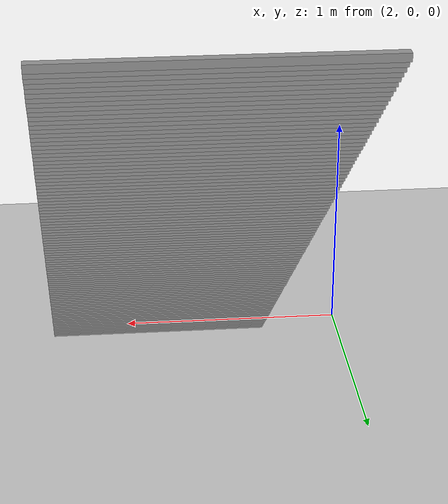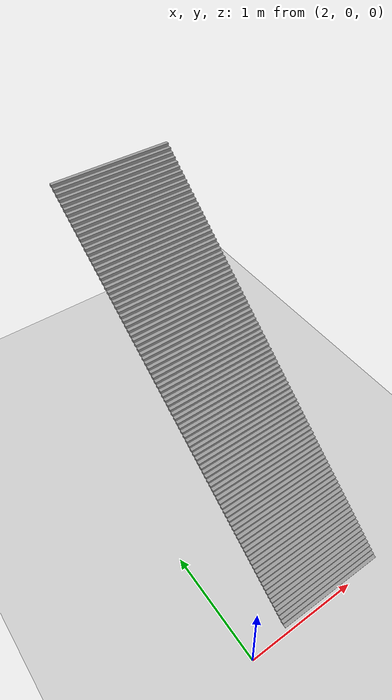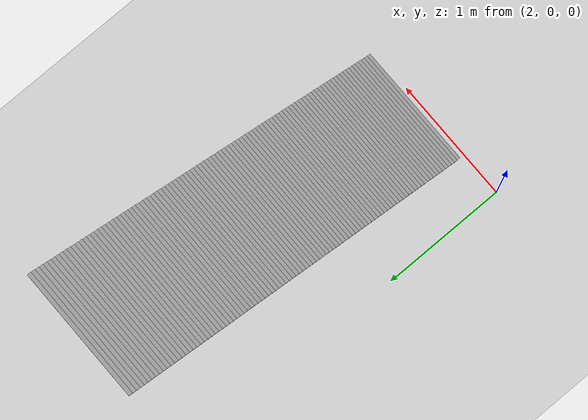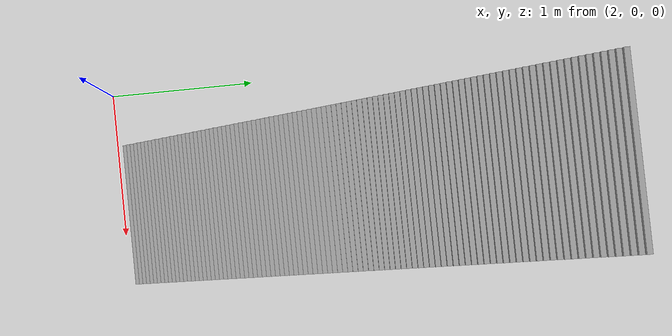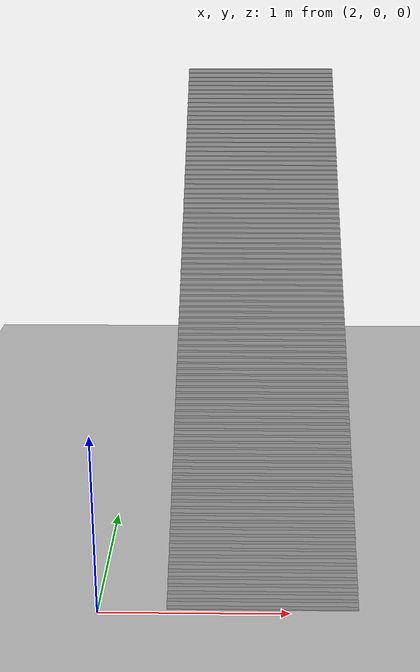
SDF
<sdf version="1.7">
 <world name="default">
  <model name="ground_plane">
   <static>1</static>
   <link name="link">
    <collision name="collision">
     <geometry><plane><normal>0 0 1</normal><size>100 100</size></plane></geometry>
     <surface>
      <contact><collide_bitmask>65535</collide_bitmask></contact>
      <friction><ode><mu>100</mu><mu2>50</mu2></ode></friction>
     </surface>
    </collision>
    <visual name="visual">
     <cast_shadows>0</cast_shadows>
     <geometry><plane><normal>0 0 1</normal><size>100 100</size></plane></geometry>
     <material>
      <script><uri>file://media/materials/scripts/gazebo.material</uri><name>Gazebo/Grey</name></script>
     </material>
    </visual>
   </link>
  </model>
  <model name="test2">
   <pose>0.709104 2.22387 -0.073744 0 -0 0</pose>
   <link name="Stairs_6">
    <visual name="Stairs_6_Visual_0">
     <pose>2.14709 -2.23346 0.0125 0 -0 -3.14159</pose>
     <geometry><box><size>1 0.03 0.025</size></box></geometry>
     <material>
      <script><uri>file://media/materials/scripts/gazebo.material</uri><name>Gazebo/Grey</name></script>
      <ambient>1 1 1 1</ambient>
     </material>
     <meta><layer>0</layer></meta>
    </visual>
    <collision name="Stairs_6_Collision_0">
     <geometry><box><size>1 0.03 0.025</size></box></geometry>
     <pose>2.14709 -2.23346 0.0125 0 -0 -3.14159</pose>
    </collision>
    <visual name="Stairs_6_Visual_1">
     <pose>2.14709 -2.20346 0.0375 0 -0 -3.14159</pose>
     <geometry><box><size>1 0.03 0.025</size></box></geometry>
     <material>
      <script><uri>file://media/materials/scripts/gazebo.material</uri><name>Gazebo/Grey</name></script>
      <ambient>1 1 1 1</ambient>
     </material>
     <meta><layer>0</layer></meta>
    </visual>
    <collision name="Stairs_6_Collision_1">
     <geometry><box><size>1 0.03 0.025</size></box></geometry>
     <pose>2.14709 -2.20346 0.0375 0 -0 -3.14159</pose>
    </collision>
    <visual name="Stairs_6_Visual_2">
     <pose>2.14709 -2.17346 0.0625 0 -0 -3.14159</pose>
     <geometry><box><size>1 0.03 0.025</size></box></geometry>
     <material>
      <script><uri>file://media/materials/scripts/gazebo.material</uri><name>Gazebo/Grey</name></script>
      <ambient>1 1 1 1</ambient>
     </material>
     <meta><layer>0</layer></meta>
    </visual>
    <collision name="Stairs_6_Collision_2">
     <geometry><box><size>1 0.03 0.025</size></box></geometry>
     <pose>2.14709 -2.17346 0.0625 0 -0 -3.14159</pose>
    </collision>
    <visual name="Stairs_6_Visual_3">
     <pose>2.14709 -2.14346 0.0875 0 -0 -3.14159</pose>
     <geometry><box><size>1 0.03 0.025</size></box></geometry>
     <material>
      <script><uri>file://media/materials/scripts/gazebo.material</uri><name>Gazebo/Grey</name></script>
      <ambient>1 1 1 1</ambient>
     </material>
     <meta><layer>0</layer></meta>
    </visual>
    <collision name="Stairs_6_Collision_3">
     <geometry><box><size>1 0.03 0.025</size></box></geometry>
     <pose>2.14709 -2.14346 0.0875 0 -0 -3.14159</pose>
    </collision>
    <visual name="Stairs_6_Visual_4">
     <pose>2.14709 -2.11346 0.1125 0 -0 -3.14159</pose>
     <geometry><box><size>1 0.03 0.025</size></box></geometry>
     <material>
      <script><uri>file://media/materials/scripts/gazebo.material</uri><name>Gazebo/Grey</name></script>
      <ambient>1 1 1 1</ambient>
     </material>
     <meta><layer>0</layer></meta>
    </visual>
    <collision name="Stairs_6_Collision_4">
     <geometry><box><size>1 0.03 0.025</size></box></geometry>
     <pose>2.14709 -2.11346 0.1125 0 -0 -3.14159</pose>
    </collision>
    <visual name="Stairs_6_Visual_5">
     <pose>2.14709 -2.08346 0.1375 0 -0 -3.14159</pose>
     <geometry><box><size>1 0.03 0.025</size></box></geometry>
     <material>
      <script><uri>file://media/materials/scripts/gazebo.material</uri><name>Gazebo/Grey</name></script>
      <ambient>1 1 1 1</ambient>
     </material>
     <meta><layer>0</layer></meta>
    </visual>
    <collision name="Stairs_6_Collision_5">
     <geometry><box><size>1 0.03 0.025</size></box></geometry>
     <pose>2.14709 -2.08346 0.1375 0 -0 -3.14159</pose>
    </collision>
    <visual name="Stairs_6_Visual_6">
     <pose>2.14709 -2.05346 0.1625 0 -0 -3.14159</pose>
     <geometry><box><size>1 0.03 0.025</size></box></geometry>
     <material>
      <script><uri>file://media/materials/scripts/gazebo.material</uri><name>Gazebo/Grey</name></script>
      <ambient>1 1 1 1</ambient>
     </material>
     <meta><layer>0</layer></meta>
    </visual>
    <collision name="Stairs_6_Collision_6">
     <geometry><box><size>1 0.03 0.025</size></box></geometry>
     <pose>2.14709 -2.05346 0.1625 0 -0 -3.14159</pose>
    </collision>
    <visual name="Stairs_6_Visual_7">
     <pose>2.14709 -2.02346 0.1875 0 -0 -3.14159</pose>
     <geometry><box><size>1 0.03 0.025</size></box></geometry>
     <material>
      <script><uri>file://media/materials/scripts/gazebo.material</uri><name>Gazebo/Grey</name></script>
      <ambient>1 1 1 1</ambient>
     </material>
     <meta><layer>0</layer></meta>
    </visual>
    <collision name="Stairs_6_Collision_7">
     <geometry><box><size>1 0.03 0.025</size></box></geometry>
     <pose>2.14709 -2.02346 0.1875 0 -0 -3.14159</pose>
    </collision>
    <visual name="Stairs_6_Visual_8">
     <pose>2.14709 -1.99346 0.2125 0 -0 -3.14159</pose>
     <geometry><box><size>1 0.03 0.025</size></box></geometry>
     <material>
      <script><uri>file://media/materials/scripts/gazebo.material</uri><name>Gazebo/Grey</name></script>
      <ambient>1 1 1 1</ambient>
     </material>
     <meta><layer>0</layer></meta>
    </visual>
    <collision name="Stairs_6_Collision_8">
     <geometry><box><size>1 0.03 0.025</size></box></geometry>
     <pose>2.14709 -1.99346 0.2125 0 -0 -3.14159</pose>
    </collision>
    <visual name="Stairs_6_Visual_9">
     <pose>2.14709 -1.96346 0.2375 0 -0 -3.14159</pose>
     <geometry><box><size>1 0.03 0.025</size></box></geometry>
     <material>
      <script><uri>file://media/materials/scripts/gazebo.material</uri><name>Gazebo/Grey</name></script>
      <ambient>1 1 1 1</ambient>
     </material>
     <meta><layer>0</layer></meta>
    </visual>
    <collision name="Stairs_6_Collision_9">
     <geometry><box><size>1 0.03 0.025</size></box></geometry>
     <pose>2.14709 -1.96346 0.2375 0 -0 -3.14159</pose>
    </collision>
    <visual name="Stairs_6_Visual_10">
     <pose>2.14709 -1.93346 0.2625 0 -0 -3.14159</pose>
     <geometry><box><size>1 0.03 0.025</size></box></geometry>
     <material>
      <script><uri>file://media/materials/scripts/gazebo.material</uri><name>Gazebo/Grey</name></script>
      <ambient>1 1 1 1</ambient>
     </material>
     <meta><layer>0</layer></meta>
    </visual>
    <collision name="Stairs_6_Collision_10">
     <geometry><box><size>1 0.03 0.025</size></box></geometry>
     <pose>2.14709 -1.93346 0.2625 0 -0 -3.14159</pose>
    </collision>
    <visual name="Stairs_6_Visual_11">
     <pose>2.14709 -1.90346 0.2875 0 -0 -3.14159</pose>
     <geometry><box><size>1 0.03 0.025</size></box></geometry>
     <material>
      <script><uri>file://media/materials/scripts/gazebo.material</uri><name>Gazebo/Grey</name></script>
      <ambient>1 1 1 1</ambient>
     </material>
     <meta><layer>0</layer></meta>
    </visual>
    <collision name="Stairs_6_Collision_11">
     <geometry><box><size>1 0.03 0.025</size></box></geometry>
     <pose>2.14709 -1.90346 0.2875 0 -0 -3.14159</pose>
    </collision>
    <visual name="Stairs_6_Visual_12">
     <pose>2.14709 -1.87346 0.3125 0 -0 -3.14159</pose>
     <geometry><box><size>1 0.03 0.025</size></box></geometry>
     <material>
      <script><uri>file://media/materials/scripts/gazebo.material</uri><name>Gazebo/Grey</name></script>
      <ambient>1 1 1 1</ambient>
     </material>
     <meta><layer>0</layer></meta>
    </visual>
    <collision name="Stairs_6_Collision_12">
     <geometry><box><size>1 0.03 0.025</size></box></geometry>
     <pose>2.14709 -1.87346 0.3125 0 -0 -3.14159</pose>
    </collision>
    <visual name="Stairs_6_Visual_13">
     <pose>2.14709 -1.84346 0.3375 0 -0 -3.14159</pose>
     <geometry><box><size>1 0.03 0.025</size></box></geometry>
     <material>
      <script><uri>file://media/materials/scripts/gazebo.material</uri><name>Gazebo/Grey</name></script>
      <ambient>1 1 1 1</ambient>
     </material>
     <meta><layer>0</layer></meta>
    </visual>
    <collision name="Stairs_6_Collision_13">
     <geometry><box><size>1 0.03 0.025</size></box></geometry>
     <pose>2.14709 -1.84346 0.3375 0 -0 -3.14159</pose>
    </collision>
    <visual name="Stairs_6_Visual_14">
     <pose>2.14709 -1.81346 0.3625 0 -0 -3.14159</pose>
     <geometry><box><size>1 0.03 0.025</size></box></geometry>
     <material>
      <script><uri>file://media/materials/scripts/gazebo.material</uri><name>Gazebo/Grey</name></script>
      <ambient>1 1 1 1</ambient>
     </material>
     <meta><layer>0</layer></meta>
    </visual>
    <collision name="Stairs_6_Collision_14">
     <geometry><box><size>1 0.03 0.025</size></box></geometry>
     <pose>2.14709 -1.81346 0.3625 0 -0 -3.14159</pose>
    </collision>
    <visual name="Stairs_6_Visual_15">
     <pose>2.14709 -1.78346 0.3875 0 -0 -3.14159</pose>
     <geometry><box><size>1 0.03 0.025</size></box></geometry>
     <material>
      <script><uri>file://media/materials/scripts/gazebo.material</uri><name>Gazebo/Grey</name></script>
      <ambient>1 1 1 1</ambient>
     </material>
     <meta><layer>0</layer></meta>
    </visual>
    <collision name="Stairs_6_Collision_15">
     <geometry><box><size>1 0.03 0.025</size></box></geometry>
     <pose>2.14709 -1.78346 0.3875 0 -0 -3.14159</pose>
    </collision>
    <visual name="Stairs_6_Visual_16">
     <pose>2.14709 -1.75346 0.4125 0 -0 -3.14159</pose>
     <geometry><box><size>1 0.03 0.025</size></box></geometry>
     <material>
      <script><uri>file://media/materials/scripts/gazebo.material</uri><name>Gazebo/Grey</name></script>
      <ambient>1 1 1 1</ambient>
     </material>
     <meta><layer>0</layer></meta>
    </visual>
    <collision name="Stairs_6_Collision_16">
     <geometry><box><size>1 0.03 0.025</size></box></geometry>
     <pose>2.14709 -1.75346 0.4125 0 -0 -3.14159</pose>
    </collision>
    <visual name="Stairs_6_Visual_17">
     <pose>2.14709 -1.72346 0.4375 0 -0 -3.14159</pose>
     <geometry><box><size>1 0.03 0.025</size></box></geometry>
     <material>
      <script><uri>file://media/materials/scripts/gazebo.material</uri><name>Gazebo/Grey</name></script>
      <ambient>1 1 1 1</ambient>
     </material>
     <meta><layer>0</layer></meta>
    </visual>
    <collision name="Stairs_6_Collision_17">
     <geometry><box><size>1 0.03 0.025</size></box></geometry>
     <pose>2.14709 -1.72346 0.4375 0 -0 -3.14159</pose>
    </collision>
    <visual name="Stairs_6_Visual_18">
     <pose>2.14709 -1.69346 0.4625 0 -0 -3.14159</pose>
     <geometry><box><size>1 0.03 0.025</size></box></geometry>
     <material>
      <script><uri>file://media/materials/scripts/gazebo.material</uri><name>Gazebo/Grey</name></script>
      <ambient>1 1 1 1</ambient>
     </material>
     <meta><layer>0</layer></meta>
    </visual>
    <collision name="Stairs_6_Collision_18">
     <geometry><box><size>1 0.03 0.025</size></box></geometry>
     <pose>2.14709 -1.69346 0.4625 0 -0 -3.14159</pose>
    </collision>
    <visual name="Stairs_6_Visual_19">
     <pose>2.14709 -1.66346 0.4875 0 -0 -3.14159</pose>
     <geometry><box><size>1 0.03 0.025</size></box></geometry>
     <material>
      <script><uri>file://media/materials/scripts/gazebo.material</uri><name>Gazebo/Grey</name></script>
      <ambient>1 1 1 1</ambient>
     </material>
     <meta><layer>0</layer></meta>
    </visual>
    <collision name="Stairs_6_Collision_19">
     <geometry><box><size>1 0.03 0.025</size></box></geometry>
     <pose>2.14709 -1.66346 0.4875 0 -0 -3.14159</pose>
    </collision>
    <visual name="Stairs_6_Visual_20">
     <pose>2.14709 -1.63346 0.5125 0 -0 -3.14159</pose>
     <geometry><box><size>1 0.03 0.025</size></box></geometry>
     <material>
      <script><uri>file://media/materials/scripts/gazebo.material</uri><name>Gazebo/Grey</name></script>
      <ambient>1 1 1 1</ambient>
     </material>
     <meta><layer>0</layer></meta>
    </visual>
    <collision name="Stairs_6_Collision_20">
     <geometry><box><size>1 0.03 0.025</size></box></geometry>
     <pose>2.14709 -1.63346 0.5125 0 -0 -3.14159</pose>
    </collision>
    <visual name="Stairs_6_Visual_21">
     <pose>2.14709 -1.60346 0.5375 0 -0 -3.14159</pose>
     <geometry><box><size>1 0.03 0.025</size></box></geometry>
     <material>
      <script><uri>file://media/materials/scripts/gazebo.material</uri><name>Gazebo/Grey</name></script>
      <ambient>1 1 1 1</ambient>
     </material>
     <meta><layer>0</layer></meta>
    </visual>
    <collision name="Stairs_6_Collision_21">
     <geometry><box><size>1 0.03 0.025</size></box></geometry>
     <pose>2.14709 -1.60346 0.5375 0 -0 -3.14159</pose>
    </collision>
    <visual name="Stairs_6_Visual_22">
     <pose>2.14709 -1.57346 0.5625 0 -0 -3.14159</pose>
     <geometry><box><size>1 0.03 0.025</size></box></geometry>
     <material>
      <script><uri>file://media/materials/scripts/gazebo.material</uri><name>Gazebo/Grey</name></script>
      <ambient>1 1 1 1</ambient>
     </material>
     <meta><layer>0</layer></meta>
    </visual>
    <collision name="Stairs_6_Collision_22">
     <geometry><box><size>1 0.03 0.025</size></box></geometry>
     <pose>2.14709 -1.57346 0.5625 0 -0 -3.14159</pose>
    </collision>
    <visual name="Stairs_6_Visual_23">
     <pose>2.14709 -1.54346 0.5875 0 -0 -3.14159</pose>
     <geometry><box><size>1 0.03 0.025</size></box></geometry>
     <material>
      <script><uri>file://media/materials/scripts/gazebo.material</uri><name>Gazebo/Grey</name></script>
      <ambient>1 1 1 1</ambient>
     </material>
     <meta><layer>0</layer></meta>
    </visual>
    <collision name="Stairs_6_Collision_23">
     <geometry><box><size>1 0.03 0.025</size></box></geometry>
     <pose>2.14709 -1.54346 0.5875 0 -0 -3.14159</pose>
    </collision>
    <visual name="Stairs_6_Visual_24">
     <pose>2.14709 -1.51346 0.6125 0 -0 -3.14159</pose>
     <geometry><box><size>1 0.03 0.025</size></box></geometry>
     <material>
      <script><uri>file://media/materials/scripts/gazebo.material</uri><name>Gazebo/Grey</name></script>
      <ambient>1 1 1 1</ambient>
     </material>
     <meta><layer>0</layer></meta>
    </visual>
    <collision name="Stairs_6_Collision_24">
     <geometry><box><size>1 0.03 0.025</size></box></geometry>
     <pose>2.14709 -1.51346 0.6125 0 -0 -3.14159</pose>
    </collision>
    <visual name="Stairs_6_Visual_25">
     <pose>2.14709 -1.48346 0.6375 0 -0 -3.14159</pose>
     <geometry><box><size>1 0.03 0.025</size></box></geometry>
     <material>
      <script><uri>file://media/materials/scripts/gazebo.material</uri><name>Gazebo/Grey</name></script>
      <ambient>1 1 1 1</ambient>
     </material>
     <meta><layer>0</layer></meta>
    </visual>
    <collision name="Stairs_6_Collision_25">
     <geometry><box><size>1 0.03 0.025</size></box></geometry>
     <pose>2.14709 -1.48346 0.6375 0 -0 -3.14159</pose>
    </collision>
    <visual name="Stairs_6_Visual_26">
     <pose>2.14709 -1.45346 0.6625 0 -0 -3.14159</pose>
     <geometry><box><size>1 0.03 0.025</size></box></geometry>
     <material>
      <script><uri>file://media/materials/scripts/gazebo.material</uri><name>Gazebo/Grey</name></script>
      <ambient>1 1 1 1</ambient>
     </material>
     <meta><layer>0</layer></meta>
    </visual>
    <collision name="Stairs_6_Collision_26">
     <geometry><box><size>1 0.03 0.025</size></box></geometry>
     <pose>2.14709 -1.45346 0.6625 0 -0 -3.14159</pose>
    </collision>
    <visual name="Stairs_6_Visual_27">
     <pose>2.14709 -1.42346 0.6875 0 -0 -3.14159</pose>
     <geometry><box><size>1 0.03 0.025</size></box></geometry>
     <material>
      <script><uri>file://media/materials/scripts/gazebo.material</uri><name>Gazebo/Grey</name></script>
      <ambient>1 1 1 1</ambient>
     </material>
     <meta><layer>0</layer></meta>
    </visual>
    <collision name="Stairs_6_Collision_27">
     <geometry><box><size>1 0.03 0.025</size></box></geometry>
     <pose>2.14709 -1.42346 0.6875 0 -0 -3.14159</pose>
    </collision>
    <visual name="Stairs_6_Visual_28">
     <pose>2.14709 -1.39346 0.7125 0 -0 -3.14159</pose>
     <geometry><box><size>1 0.03 0.025</size></box></geometry>
     <material>
      <script><uri>file://media/materials/scripts/gazebo.material</uri><name>Gazebo/Grey</name></script>
      <ambient>1 1 1 1</ambient>
     </material>
     <meta><layer>0</layer></meta>
    </visual>
    <collision name="Stairs_6_Collision_28">
     <geometry><box><size>1 0.03 0.025</size></box></geometry>
     <pose>2.14709 -1.39346 0.7125 0 -0 -3.14159</pose>
    </collision>
    <visual name="Stairs_6_Visual_29">
     <pose>2.14709 -1.36346 0.7375 0 -0 -3.14159</pose>
     <geometry><box><size>1 0.03 0.025</size></box></geometry>
     <material>
      <script><uri>file://media/materials/scripts/gazebo.material</uri><name>Gazebo/Grey</name></script>
      <ambient>1 1 1 1</ambient>
     </material>
     <meta><layer>0</layer></meta>
    </visual>
    <collision name="Stairs_6_Collision_29">
     <geometry><box><size>1 0.03 0.025</size></box></geometry>
     <pose>2.14709 -1.36346 0.7375 0 -0 -3.14159</pose>
    </collision>
    <visual name="Stairs_6_Visual_30">
     <pose>2.14709 -1.33346 0.7625 0 -0 -3.14159</pose>
     <geometry><box><size>1 0.03 0.025</size></box></geometry>
     <material>
      <script><uri>file://media/materials/scripts/gazebo.material</uri><name>Gazebo/Grey</name></script>
      <ambient>1 1 1 1</ambient>
     </material>
     <meta><layer>0</layer></meta>
    </visual>
    <collision name="Stairs_6_Collision_30">
     <geometry><box><size>1 0.03 0.025</size></box></geometry>
     <pose>2.14709 -1.33346 0.7625 0 -0 -3.14159</pose>
    </collision>
    <visual name="Stairs_6_Visual_31">
     <pose>2.14709 -1.30346 0.7875 0 -0 -3.14159</pose>
     <geometry><box><size>1 0.03 0.025</size></box></geometry>
     <material>
      <script><uri>file://media/materials/scripts/gazebo.material</uri><name>Gazebo/Grey</name></script>
      <ambient>1 1 1 1</ambient>
     </material>
     <meta><layer>0</layer></meta>
    </visual>
    <collision name="Stairs_6_Collision_31">
     <geometry><box><size>1 0.03 0.025</size></box></geometry>
     <pose>2.14709 -1.30346 0.7875 0 -0 -3.14159</pose>
    </collision>
    <visual name="Stairs_6_Visual_32">
     <pose>2.14709 -1.27346 0.8125 0 -0 -3.14159</pose>
     <geometry><box><size>1 0.03 0.025</size></box></geometry>
     <material>
      <script><uri>file://media/materials/scripts/gazebo.material</uri><name>Gazebo/Grey</name></script>
      <ambient>1 1 1 1</ambient>
     </material>
     <meta><layer>0</layer></meta>
    </visual>
    <collision name="Stairs_6_Collision_32">
     <geometry><box><size>1 0.03 0.025</size></box></geometry>
     <pose>2.14709 -1.27346 0.8125 0 -0 -3.14159</pose>
    </collision>
    <visual name="Stairs_6_Visual_33">
     <pose>2.14709 -1.24346 0.8375 0 -0 -3.14159</pose>
     <geometry><box><size>1 0.03 0.025</size></box></geometry>
     <material>
      <script><uri>file://media/materials/scripts/gazebo.material</uri><name>Gazebo/Grey</name></script>
      <ambient>1 1 1 1</ambient>
     </material>
     <meta><layer>0</layer></meta>
    </visual>
    <collision name="Stairs_6_Collision_33">
     <geometry><box><size>1 0.03 0.025</size></box></geometry>
     <pose>2.14709 -1.24346 0.8375 0 -0 -3.14159</pose>
    </collision>
    <visual name="Stairs_6_Visual_34">
     <pose>2.14709 -1.21346 0.8625 0 -0 -3.14159</pose>
     <geometry><box><size>1 0.03 0.025</size></box></geometry>
     <material>
      <script><uri>file://media/materials/scripts/gazebo.material</uri><name>Gazebo/Grey</name></script>
      <ambient>1 1 1 1</ambient>
     </material>
     <meta><layer>0</layer></meta>
    </visual>
    <collision name="Stairs_6_Collision_34">
     <geometry><box><size>1 0.03 0.025</size></box></geometry>
     <pose>2.14709 -1.21346 0.8625 0 -0 -3.14159</pose>
    </collision>
    <visual name="Stairs_6_Visual_35">
     <pose>2.14709 -1.18346 0.8875 0 -0 -3.14159</pose>
     <geometry><box><size>1 0.03 0.025</size></box></geometry>
     <material>
      <script><uri>file://media/materials/scripts/gazebo.material</uri><name>Gazebo/Grey</name></script>
      <ambient>1 1 1 1</ambient>
     </material>
     <meta><layer>0</layer></meta>
    </visual>
    <collision name="Stairs_6_Collision_35">
     <geometry><box><size>1 0.03 0.025</size></box></geometry>
     <pose>2.14709 -1.18346 0.8875 0 -0 -3.14159</pose>
    </collision>
    <visual name="Stairs_6_Visual_36">
     <pose>2.14709 -1.15346 0.9125 0 -0 -3.14159</pose>
     <geometry><box><size>1 0.03 0.025</size></box></geometry>
     <material>
      <script><uri>file://media/materials/scripts/gazebo.material</uri><name>Gazebo/Grey</name></script>
      <ambient>1 1 1 1</ambient>
     </material>
     <meta><layer>0</layer></meta>
    </visual>
    <collision name="Stairs_6_Collision_36">
     <geometry><box><size>1 0.03 0.025</size></box></geometry>
     <pose>2.14709 -1.15346 0.9125 0 -0 -3.14159</pose>
    </collision>
    <visual name="Stairs_6_Visual_37">
     <pose>2.14709 -1.12346 0.9375 0 -0 -3.14159</pose>
     <geometry><box><size>1 0.03 0.025</size></box></geometry>
     <material>
      <script><uri>file://media/materials/scripts/gazebo.material</uri><name>Gazebo/Grey</name></script>
      <ambient>1 1 1 1</ambient>
     </material>
     <meta><layer>0</layer></meta>
    </visual>
    <collision name="Stairs_6_Collision_37">
     <geometry><box><size>1 0.03 0.025</size></box></geometry>
     <pose>2.14709 -1.12346 0.9375 0 -0 -3.14159</pose>
    </collision>
    <visual name="Stairs_6_Visual_38">
     <pose>2.14709 -1.09346 0.9625 0 -0 -3.14159</pose>
     <geometry><box><size>1 0.03 0.025</size></box></geometry>
     <material>
      <script><uri>file://media/materials/scripts/gazebo.material</uri><name>Gazebo/Grey</name></script>
      <ambient>1 1 1 1</ambient>
     </material>
     <meta><layer>0</layer></meta>
    </visual>
    <collision name="Stairs_6_Collision_38">
     <geometry><box><size>1 0.03 0.025</size></box></geometry>
     <pose>2.14709 -1.09346 0.9625 0 -0 -3.14159</pose>
    </collision>
    <visual name="Stairs_6_Visual_39">
     <pose>2.14709 -1.06346 0.9875 0 -0 -3.14159</pose>
     <geometry><box><size>1 0.03 0.025</size></box></geometry>
     <material>
      <script><uri>file://media/materials/scripts/gazebo.material</uri><name>Gazebo/Grey</name></script>
      <ambient>1 1 1 1</ambient>
     </material>
     <meta><layer>0</layer></meta>
    </visual>
    <collision name="Stairs_6_Collision_39">
     <geometry><box><size>1 0.03 0.025</size></box></geometry>
     <pose>2.14709 -1.06346 0.9875 0 -0 -3.14159</pose>
    </collision>
    <visual name="Stairs_6_Visual_40">
     <pose>2.14709 -1.03346 1.0125 0 -0 -3.14159</pose>
     <geometry><box><size>1 0.03 0.025</size></box></geometry>
     <material>
      <script><uri>file://media/materials/scripts/gazebo.material</uri><name>Gazebo/Grey</name></script>
      <ambient>1 1 1 1</ambient>
     </material>
     <meta><layer>0</layer></meta>
    </visual>
    <collision name="Stairs_6_Collision_40">
     <geometry><box><size>1 0.03 0.025</size></box></geometry>
     <pose>2.14709 -1.03346 1.0125 0 -0 -3.14159</pose>
    </collision>
    <visual name="Stairs_6_Visual_41">
     <pose>2.14709 -1.00346 1.0375 0 -0 -3.14159</pose>
     <geometry><box><size>1 0.03 0.025</size></box></geometry>
     <material>
      <script><uri>file://media/materials/scripts/gazebo.material</uri><name>Gazebo/Grey</name></script>
      <ambient>1 1 1 1</ambient>
     </material>
     <meta><layer>0</layer></meta>
    </visual>
    <collision name="Stairs_6_Collision_41">
     <geometry><box><size>1 0.03 0.025</size></box></geometry>
     <pose>2.14709 -1.00346 1.0375 0 -0 -3.14159</pose>
    </collision>
    <visual name="Stairs_6_Visual_42">
     <pose>2.14709 -0.973456 1.0625 0 -0 -3.14159</pose>
     <geometry><box><size>1 0.03 0.025</size></box></geometry>
     <material>
      <script><uri>file://media/materials/scripts/gazebo.material</uri><name>Gazebo/Grey</name></script>
      <ambient>1 1 1 1</ambient>
     </material>
     <meta><layer>0</layer></meta>
    </visual>
    <collision name="Stairs_6_Collision_42">
     <geometry><box><size>1 0.03 0.025</size></box></geometry>
     <pose>2.14709 -0.973456 1.0625 0 -0 -3.14159</pose>
    </collision>
    <visual name="Stairs_6_Visual_43">
     <pose>2.14709 -0.943457 1.0875 0 -0 -3.14159</pose>
     <geometry><box><size>1 0.03 0.025</size></box></geometry>
     <material>
      <script><uri>file://media/materials/scripts/gazebo.material</uri><name>Gazebo/Grey</name></script>
      <ambient>1 1 1 1</ambient>
     </material>
     <meta><layer>0</layer></meta>
    </visual>
    <collision name="Stairs_6_Collision_43">
     <geometry><box><size>1 0.03 0.025</size></box></geometry>
     <pose>2.14709 -0.943457 1.0875 0 -0 -3.14159</pose>
    </collision>
    <visual name="Stairs_6_Visual_44">
     <pose>2.14709 -0.913456 1.1125 0 -0 -3.14159</pose>
     <geometry><box><size>1 0.03 0.025</size></box></geometry>
     <material>
      <script><uri>file://media/materials/scripts/gazebo.material</uri><name>Gazebo/Grey</name></script>
      <ambient>1 1 1 1</ambient>
     </material>
     <meta><layer>0</layer></meta>
    </visual>
    <collision name="Stairs_6_Collision_44">
     <geometry><box><size>1 0.03 0.025</size></box></geometry>
     <pose>2.14709 -0.913456 1.1125 0 -0 -3.14159</pose>
    </collision>
    <visual name="Stairs_6_Visual_45">
     <pose>2.14709 -0.883457 1.1375 0 -0 -3.14159</pose>
     <geometry><box><size>1 0.03 0.025</size></box></geometry>
     <material>
      <script><uri>file://media/materials/scripts/gazebo.material</uri><name>Gazebo/Grey</name></script>
      <ambient>1 1 1 1</ambient>
     </material>
     <meta><layer>0</layer></meta>
    </visual>
    <collision name="Stairs_6_Collision_45">
     <geometry><box><size>1 0.03 0.025</size></box></geometry>
     <pose>2.14709 -0.883457 1.1375 0 -0 -3.14159</pose>
    </collision>
    <visual name="Stairs_6_Visual_46">
     <pose>2.14709 -0.853456 1.1625 0 -0 -3.14159</pose>
     <geometry><box><size>1 0.03 0.025</size></box></geometry>
     <material>
      <script><uri>file://media/materials/scripts/gazebo.material</uri><name>Gazebo/Grey</name></script>
      <ambient>1 1 1 1</ambient>
     </material>
     <meta><layer>0</layer></meta>
    </visual>
    <collision name="Stairs_6_Collision_46">
     <geometry><box><size>1 0.03 0.025</size></box></geometry>
     <pose>2.14709 -0.853456 1.1625 0 -0 -3.14159</pose>
    </collision>
    <visual name="Stairs_6_Visual_47">
     <pose>2.14709 -0.823456 1.1875 0 -0 -3.14159</pose>
     <geometry><box><size>1 0.03 0.025</size></box></geometry>
     <material>
      <script><uri>file://media/materials/scripts/gazebo.material</uri><name>Gazebo/Grey</name></script>
      <ambient>1 1 1 1</ambient>
     </material>
     <meta><layer>0</layer></meta>
    </visual>
    <collision name="Stairs_6_Collision_47">
     <geometry><box><size>1 0.03 0.025</size></box></geometry>
     <pose>2.14709 -0.823456 1.1875 0 -0 -3.14159</pose>
    </collision>
    <visual name="Stairs_6_Visual_48">
     <pose>2.14709 -0.793457 1.2125 0 -0 -3.14159</pose>
     <geometry><box><size>1 0.03 0.025</size></box></geometry>
     <material>
      <script><uri>file://media/materials/scripts/gazebo.material</uri><name>Gazebo/Grey</name></script>
      <ambient>1 1 1 1</ambient>
     </material>
     <meta><layer>0</layer></meta>
    </visual>
    <collision name="Stairs_6_Collision_48">
     <geometry><box><size>1 0.03 0.025</size></box></geometry>
     <pose>2.14709 -0.793457 1.2125 0 -0 -3.14159</pose>
    </collision>
    <visual name="Stairs_6_Visual_49">
     <pose>2.14709 -0.763456 1.2375 0 -0 -3.14159</pose>
     <geometry><box><size>1 0.03 0.025</size></box></geometry>
     <material>
      <script><uri>file://media/materials/scripts/gazebo.material</uri><name>Gazebo/Grey</name></script>
      <ambient>1 1 1 1</ambient>
     </material>
     <meta><layer>0</layer></meta>
    </visual>
    <collision name="Stairs_6_Collision_49">
     <geometry><box><size>1 0.03 0.025</size></box></geometry>
     <pose>2.14709 -0.763456 1.2375 0 -0 -3.14159</pose>
    </collision>
    <visual name="Stairs_6_Visual_50">
     <pose>2.14709 -0.733457 1.2625 0 -0 -3.14159</pose>
     <geometry><box><size>1 0.03 0.025</size></box></geometry>
     <material>
      <script><uri>file://media/materials/scripts/gazebo.material</uri><name>Gazebo/Grey</name></script>
      <ambient>1 1 1 1</ambient>
     </material>
     <meta><layer>0</layer></meta>
    </visual>
    <collision name="Stairs_6_Collision_50">
     <geometry><box><size>1 0.03 0.025</size></box></geometry>
     <pose>2.14709 -0.733457 1.2625 0 -0 -3.14159</pose>
    </collision>
    <visual name="Stairs_6_Visual_51">
     <pose>2.14709 -0.703456 1.2875 0 -0 -3.14159</pose>
     <geometry><box><size>1 0.03 0.025</size></box></geometry>
     <material>
      <script><uri>file://media/materials/scripts/gazebo.material</uri><name>Gazebo/Grey</name></script>
      <ambient>1 1 1 1</ambient>
     </material>
     <meta><layer>0</layer></meta>
    </visual>
    <collision name="Stairs_6_Collision_51">
     <geometry><box><size>1 0.03 0.025</size></box></geometry>
     <pose>2.14709 -0.703456 1.2875 0 -0 -3.14159</pose>
    </collision>
    <visual name="Stairs_6_Visual_52">
     <pose>2.14709 -0.673457 1.3125 0 -0 -3.14159</pose>
     <geometry><box><size>1 0.03 0.025</size></box></geometry>
     <material>
      <script><uri>file://media/materials/scripts/gazebo.material</uri><name>Gazebo/Grey</name></script>
      <ambient>1 1 1 1</ambient>
     </material>
     <meta><layer>0</layer></meta>
    </visual>
    <collision name="Stairs_6_Collision_52">
     <geometry><box><size>1 0.03 0.025</size></box></geometry>
     <pose>2.14709 -0.673457 1.3125 0 -0 -3.14159</pose>
    </collision>
    <visual name="Stairs_6_Visual_53">
     <pose>2.14709 -0.643456 1.3375 0 -0 -3.14159</pose>
     <geometry><box><size>1 0.03 0.025</size></box></geometry>
     <material>
      <script><uri>file://media/materials/scripts/gazebo.material</uri><name>Gazebo/Grey</name></script>
      <ambient>1 1 1 1</ambient>
     </material>
     <meta><layer>0</layer></meta>
    </visual>
    <collision name="Stairs_6_Collision_53">
     <geometry><box><size>1 0.03 0.025</size></box></geometry>
     <pose>2.14709 -0.643456 1.3375 0 -0 -3.14159</pose>
    </collision>
    <visual name="Stairs_6_Visual_54">
     <pose>2.14709 -0.613456 1.3625 0 -0 -3.14159</pose>
     <geometry><box><size>1 0.03 0.025</size></box></geometry>
     <material>
      <script><uri>file://media/materials/scripts/gazebo.material</uri><name>Gazebo/Grey</name></script>
      <ambient>1 1 1 1</ambient>
     </material>
     <meta><layer>0</layer></meta>
    </visual>
    <collision name="Stairs_6_Collision_54">
     <geometry><box><size>1 0.03 0.025</size></box></geometry>
     <pose>2.14709 -0.613456 1.3625 0 -0 -3.14159</pose>
    </collision>
    <visual name="Stairs_6_Visual_55">
     <pose>2.14709 -0.583457 1.3875 0 -0 -3.14159</pose>
     <geometry><box><size>1 0.03 0.025</size></box></geometry>
     <material>
      <script><uri>file://media/materials/scripts/gazebo.material</uri><name>Gazebo/Grey</name></script>
      <ambient>1 1 1 1</ambient>
     </material>
     <meta><layer>0</layer></meta>
    </visual>
    <collision name="Stairs_6_Collision_55">
     <geometry><box><size>1 0.03 0.025</size></box></geometry>
     <pose>2.14709 -0.583457 1.3875 0 -0 -3.14159</pose>
    </collision>
    <visual name="Stairs_6_Visual_56">
     <pose>2.14709 -0.553457 1.4125 0 -0 -3.14159</pose>
     <geometry><box><size>1 0.03 0.025</size></box></geometry>
     <material>
      <script><uri>file://media/materials/scripts/gazebo.material</uri><name>Gazebo/Grey</name></script>
      <ambient>1 1 1 1</ambient>
     </material>
     <meta><layer>0</layer></meta>
    </visual>
    <collision name="Stairs_6_Collision_56">
     <geometry><box><size>1 0.03 0.025</size></box></geometry>
     <pose>2.14709 -0.553457 1.4125 0 -0 -3.14159</pose>
    </collision>
    <visual name="Stairs_6_Visual_57">
     <pose>2.14709 -0.523457 1.4375 0 -0 -3.14159</pose>
     <geometry><box><size>1 0.03 0.025</size></box></geometry>
     <material>
      <script><uri>file://media/materials/scripts/gazebo.material</uri><name>Gazebo/Grey</name></script>
      <ambient>1 1 1 1</ambient>
     </material>
     <meta><layer>0</layer></meta>
    </visual>
    <collision name="Stairs_6_Collision_57">
     <geometry><box><size>1 0.03 0.025</size></box></geometry>
     <pose>2.14709 -0.523457 1.4375 0 -0 -3.14159</pose>
    </collision>
    <visual name="Stairs_6_Visual_58">
     <pose>2.14709 -0.493456 1.4625 0 -0 -3.14159</pose>
     <geometry><box><size>1 0.03 0.025</size></box></geometry>
     <material>
      <script><uri>file://media/materials/scripts/gazebo.material</uri><name>Gazebo/Grey</name></script>
      <ambient>1 1 1 1</ambient>
     </material>
     <meta><layer>0</layer></meta>
    </visual>
    <collision name="Stairs_6_Collision_58">
     <geometry><box><size>1 0.03 0.025</size></box></geometry>
     <pose>2.14709 -0.493456 1.4625 0 -0 -3.14159</pose>
    </collision>
    <visual name="Stairs_6_Visual_59">
     <pose>2.14709 -0.463456 1.4875 0 -0 -3.14159</pose>
     <geometry><box><size>1 0.03 0.025</size></box></geometry>
     <material>
      <script><uri>file://media/materials/scripts/gazebo.material</uri><name>Gazebo/Grey</name></script>
      <ambient>1 1 1 1</ambient>
     </material>
     <meta><layer>0</layer></meta>
    </visual>
    <collision name="Stairs_6_Collision_59">
     <geometry><box><size>1 0.03 0.025</size></box></geometry>
     <pose>2.14709 -0.463456 1.4875 0 -0 -3.14159</pose>
    </collision>
    <visual name="Stairs_6_Visual_60">
     <pose>2.14709 -0.433456 1.5125 0 -0 -3.14159</pose>
     <geometry><box><size>1 0.03 0.025</size></box></geometry>
     <material>
      <script><uri>file://media/materials/scripts/gazebo.material</uri><name>Gazebo/Grey</name></script>
      <ambient>1 1 1 1</ambient>
     </material>
     <meta><layer>0</layer></meta>
    </visual>
    <collision name="Stairs_6_Collision_60">
     <geometry><box><size>1 0.03 0.025</size></box></geometry>
     <pose>2.14709 -0.433456 1.5125 0 -0 -3.14159</pose>
    </collision>
    <visual name="Stairs_6_Visual_61">
     <pose>2.14709 -0.403456 1.5375 0 -0 -3.14159</pose>
     <geometry><box><size>1 0.03 0.025</size></box></geometry>
     <material>
      <script><uri>file://media/materials/scripts/gazebo.material</uri><name>Gazebo/Grey</name></script>
      <ambient>1 1 1 1</ambient>
     </material>
     <meta><layer>0</layer></meta>
    </visual>
    <collision name="Stairs_6_Collision_61">
     <geometry><box><size>1 0.03 0.025</size></box></geometry>
     <pose>2.14709 -0.403456 1.5375 0 -0 -3.14159</pose>
    </collision>
    <visual name="Stairs_6_Visual_62">
     <pose>2.14709 -0.373456 1.5625 0 -0 -3.14159</pose>
     <geometry><box><size>1 0.03 0.025</size></box></geometry>
     <material>
      <script><uri>file://media/materials/scripts/gazebo.material</uri><name>Gazebo/Grey</name></script>
      <ambient>1 1 1 1</ambient>
     </material>
     <meta><layer>0</layer></meta>
    </visual>
    <collision name="Stairs_6_Collision_62">
     <geometry><box><size>1 0.03 0.025</size></box></geometry>
     <pose>2.14709 -0.373456 1.5625 0 -0 -3.14159</pose>
    </collision>
    <visual name="Stairs_6_Visual_63">
     <pose>2.14709 -0.343457 1.5875 0 -0 -3.14159</pose>
     <geometry><box><size>1 0.03 0.025</size></box></geometry>
     <material>
      <script><uri>file://media/materials/scripts/gazebo.material</uri><name>Gazebo/Grey</name></script>
      <ambient>1 1 1 1</ambient>
     </material>
     <meta><layer>0</layer></meta>
    </visual>
    <collision name="Stairs_6_Collision_63">
     <geometry><box><size>1 0.03 0.025</size></box></geometry>
     <pose>2.14709 -0.343457 1.5875 0 -0 -3.14159</pose>
    </collision>
    <visual name="Stairs_6_Visual_64">
     <pose>2.14709 -0.313457 1.6125 0 -0 -3.14159</pose>
     <geometry><box><size>1 0.03 0.025</size></box></geometry>
     <material>
      <script><uri>file://media/materials/scripts/gazebo.material</uri><name>Gazebo/Grey</name></script>
      <ambient>1 1 1 1</ambient>
     </material>
     <meta><layer>0</layer></meta>
    </visual>
    <collision name="Stairs_6_Collision_64">
     <geometry><box><size>1 0.03 0.025</size></box></geometry>
     <pose>2.14709 -0.313457 1.6125 0 -0 -3.14159</pose>
    </collision>
    <visual name="Stairs_6_Visual_65">
     <pose>2.14709 -0.283457 1.6375 0 -0 -3.14159</pose>
     <geometry><box><size>1 0.03 0.025</size></box></geometry>
     <material>
      <script><uri>file://media/materials/scripts/gazebo.material</uri><name>Gazebo/Grey</name></script>
      <ambient>1 1 1 1</ambient>
     </material>
     <meta><layer>0</layer></meta>
    </visual>
    <collision name="Stairs_6_Collision_65">
     <geometry><box><size>1 0.03 0.025</size></box></geometry>
     <pose>2.14709 -0.283457 1.6375 0 -0 -3.14159</pose>
    </collision>
    <visual name="Stairs_6_Visual_66">
     <pose>2.14709 -0.253457 1.6625 0 -0 -3.14159</pose>
     <geometry><box><size>1 0.03 0.025</size></box></geometry>
     <material>
      <script><uri>file://media/materials/scripts/gazebo.material</uri><name>Gazebo/Grey</name></script>
      <ambient>1 1 1 1</ambient>
     </material>
     <meta><layer>0</layer></meta>
    </visual>
    <collision name="Stairs_6_Collision_66">
     <geometry><box><size>1 0.03 0.025</size></box></geometry>
     <pose>2.14709 -0.253457 1.6625 0 -0 -3.14159</pose>
    </collision>
    <visual name="Stairs_6_Visual_67">
     <pose>2.14709 -0.223456 1.6875 0 -0 -3.14159</pose>
     <geometry><box><size>1 0.03 0.025</size></box></geometry>
     <material>
      <script><uri>file://media/materials/scripts/gazebo.material</uri><name>Gazebo/Grey</name></script>
      <ambient>1 1 1 1</ambient>
     </material>
     <meta><layer>0</layer></meta>
    </visual>
    <collision name="Stairs_6_Collision_67">
     <geometry><box><size>1 0.03 0.025</size></box></geometry>
     <pose>2.14709 -0.223456 1.6875 0 -0 -3.14159</pose>
    </collision>
    <visual name="Stairs_6_Visual_68">
     <pose>2.14709 -0.193456 1.7125 0 -0 -3.14159</pose>
     <geometry><box><size>1 0.03 0.025</size></box></geometry>
     <material>
      <script><uri>file://media/materials/scripts/gazebo.material</uri><name>Gazebo/Grey</name></script>
      <ambient>1 1 1 1</ambient>
     </material>
     <meta><layer>0</layer></meta>
    </visual>
    <collision name="Stairs_6_Collision_68">
     <geometry><box><size>1 0.03 0.025</size></box></geometry>
     <pose>2.14709 -0.193456 1.7125 0 -0 -3.14159</pose>
    </collision>
    <visual name="Stairs_6_Visual_69">
     <pose>2.14709 -0.163456 1.7375 0 -0 -3.14159</pose>
     <geometry><box><size>1 0.03 0.025</size></box></geometry>
     <material>
      <script><uri>file://media/materials/scripts/gazebo.material</uri><name>Gazebo/Grey</name></script>
      <ambient>1 1 1 1</ambient>
     </material>
     <meta><layer>0</layer></meta>
    </visual>
    <collision name="Stairs_6_Collision_69">
     <geometry><box><size>1 0.03 0.025</size></box></geometry>
     <pose>2.14709 -0.163456 1.7375 0 -0 -3.14159</pose>
    </collision>
    <visual name="Stairs_6_Visual_70">
     <pose>2.14709 -0.133456 1.7625 0 -0 -3.14159</pose>
     <geometry><box><size>1 0.03 0.025</size></box></geometry>
     <material>
      <script><uri>file://media/materials/scripts/gazebo.material</uri><name>Gazebo/Grey</name></script>
      <ambient>1 1 1 1</ambient>
     </material>
     <meta><layer>0</layer></meta>
    </visual>
    <collision name="Stairs_6_Collision_70">
     <geometry><box><size>1 0.03 0.025</size></box></geometry>
     <pose>2.14709 -0.133456 1.7625 0 -0 -3.14159</pose>
    </collision>
    <visual name="Stairs_6_Visual_71">
     <pose>2.14709 -0.103456 1.7875 0 -0 -3.14159</pose>
     <geometry><box><size>1 0.03 0.025</size></box></geometry>
     <material>
      <script><uri>file://media/materials/scripts/gazebo.material</uri><name>Gazebo/Grey</name></script>
      <ambient>1 1 1 1</ambient>
     </material>
     <meta><layer>0</layer></meta>
    </visual>
    <collision name="Stairs_6_Collision_71">
     <geometry><box><size>1 0.03 0.025</size></box></geometry>
     <pose>2.14709 -0.103456 1.7875 0 -0 -3.14159</pose>
    </collision>
    <visual name="Stairs_6_Visual_72">
     <pose>2.14709 -0.073457 1.8125 0 -0 -3.14159</pose>
     <geometry><box><size>1 0.03 0.025</size></box></geometry>
     <material>
      <script><uri>file://media/materials/scripts/gazebo.material</uri><name>Gazebo/Grey</name></script>
      <ambient>1 1 1 1</ambient>
     </material>
     <meta><layer>0</layer></meta>
    </visual>
    <collision name="Stairs_6_Collision_72">
     <geometry><box><size>1 0.03 0.025</size></box></geometry>
     <pose>2.14709 -0.073457 1.8125 0 -0 -3.14159</pose>
    </collision>
    <visual name="Stairs_6_Visual_73">
     <pose>2.14709 -0.043457 1.8375 0 -0 -3.14159</pose>
     <geometry><box><size>1 0.03 0.025</size></box></geometry>
     <material>
      <script><uri>file://media/materials/scripts/gazebo.material</uri><name>Gazebo/Grey</name></script>
      <ambient>1 1 1 1</ambient>
     </material>
     <meta><layer>0</layer></meta>
    </visual>
    <collision name="Stairs_6_Collision_73">
     <geometry><box><size>1 0.03 0.025</size></box></geometry>
     <pose>2.14709 -0.043457 1.8375 0 -0 -3.14159</pose>
    </collision>
    <visual name="Stairs_6_Visual_74">
     <pose>2.14709 -0.013456 1.8625 0 -0 -3.14159</pose>
     <geometry><box><size>1 0.03 0.025</size></box></geometry>
     <material>
      <script><uri>file://media/materials/scripts/gazebo.material</uri><name>Gazebo/Grey</name></script>
      <ambient>1 1 1 1</ambient>
     </material>
     <meta><layer>0</layer></meta>
    </visual>
    <collision name="Stairs_6_Collision_74">
     <geometry><box><size>1 0.03 0.025</size></box></geometry>
     <pose>2.14709 -0.013456 1.8625 0 -0 -3.14159</pose>
    </collision>
    <visual name="Stairs_6_Visual_75">
     <pose>2.14709 0.016543 1.8875 0 -0 -3.14159</pose>
     <geometry><box><size>1 0.03 0.025</size></box></geometry>
     <material>
      <script><uri>file://media/materials/scripts/gazebo.material</uri><name>Gazebo/Grey</name></script>
      <ambient>1 1 1 1</ambient>
     </material>
     <meta><layer>0</layer></meta>
    </visual>
    <collision name="Stairs_6_Collision_75">
     <geometry><box><size>1 0.03 0.025</size></box></geometry>
     <pose>2.14709 0.016543 1.8875 0 -0 -3.14159</pose>
    </collision>
    <visual name="Stairs_6_Visual_76">
     <pose>2.14709 0.046544 1.9125 0 -0 -3.14159</pose>
     <geometry><box><size>1 0.03 0.025</size></box></geometry>
     <material>
      <script><uri>file://media/materials/scripts/gazebo.material</uri><name>Gazebo/Grey</name></script>
      <ambient>1 1 1 1</ambient>
     </material>
     <meta><layer>0</layer></meta>
    </visual>
    <collision name="Stairs_6_Collision_76">
     <geometry><box><size>1 0.03 0.025</size></box></geometry>
     <pose>2.14709 0.046544 1.9125 0 -0 -3.14159</pose>
    </collision>
    <visual name="Stairs_6_Visual_77">
     <pose>2.14709 0.076544 1.9375 0 -0 -3.14159</pose>
     <geometry><box><size>1 0.03 0.025</size></box></geometry>
     <material>
      <script><uri>file://media/materials/scripts/gazebo.material</uri><name>Gazebo/Grey</name></script>
      <ambient>1 1 1 1</ambient>
     </material>
     <meta><layer>0</layer></meta>
    </visual>
    <collision name="Stairs_6_Collision_77">
     <geometry><box><size>1 0.03 0.025</size></box></geometry>
     <pose>2.14709 0.076544 1.9375 0 -0 -3.14159</pose>
    </collision>
    <visual name="Stairs_6_Visual_78">
     <pose>2.14709 0.106544 1.9625 0 -0 -3.14159</pose>
     <geometry><box><size>1 0.03 0.025</size></box></geometry>
     <material>
      <script><uri>file://media/materials/scripts/gazebo.material</uri><name>Gazebo/Grey</name></script>
      <ambient>1 1 1 1</ambient>
     </material>
     <meta><layer>0</layer></meta>
    </visual>
    <collision name="Stairs_6_Collision_78">
     <geometry><box><size>1 0.03 0.025</size></box></geometry>
     <pose>2.14709 0.106544 1.9625 0 -0 -3.14159</pose>
    </collision>
    <visual name="Stairs_6_Visual_79">
     <pose>2.14709 0.136544 1.9875 0 -0 -3.14159</pose>
     <geometry><box><size>1 0.03 0.025</size></box></geometry>
     <material>
      <script><uri>file://media/materials/scripts/gazebo.material</uri><name>Gazebo/Grey</name></script>
      <ambient>1 1 1 1</ambient>
     </material>
     <meta><layer>0</layer></meta>
    </visual>
    <collision name="Stairs_6_Collision_79">
     <geometry><box><size>1 0.03 0.025</size></box></geometry>
     <pose>2.14709 0.136544 1.9875 0 -0 -3.14159</pose>
    </collision>
    <visual name="Stairs_6_Visual_80">
     <pose>2.14709 0.166543 2.0125 0 -0 -3.14159</pose>
     <geometry><box><size>1 0.03 0.025</size></box></geometry>
     <material>
      <script><uri>file://media/materials/scripts/gazebo.material</uri><name>Gazebo/Grey</name></script>
      <ambient>1 1 1 1</ambient>
     </material>
     <meta><layer>0</layer></meta>
    </visual>
    <collision name="Stairs_6_Collision_80">
     <geometry><box><size>1 0.03 0.025</size></box></geometry>
     <pose>2.14709 0.166543 2.0125 0 -0 -3.14159</pose>
    </collision>
    <visual name="Stairs_6_Visual_81">
     <pose>2.14709 0.196543 2.0375 0 -0 -3.14159</pose>
     <geometry><box><size>1 0.03 0.025</size></box></geometry>
     <material>
      <script><uri>file://media/materials/scripts/gazebo.material</uri><name>Gazebo/Grey</name></script>
      <ambient>1 1 1 1</ambient>
     </material>
     <meta><layer>0</layer></meta>
    </visual>
    <collision name="Stairs_6_Collision_81">
     <geometry><box><size>1 0.03 0.025</size></box></geometry>
     <pose>2.14709 0.196543 2.0375 0 -0 -3.14159</pose>
    </collision>
    <visual name="Stairs_6_Visual_82">
     <pose>2.14709 0.226543 2.0625 0 -0 -3.14159</pose>
     <geometry><box><size>1 0.03 0.025</size></box></geometry>
     <material>
      <script><uri>file://media/materials/scripts/gazebo.material</uri><name>Gazebo/Grey</name></script>
      <ambient>1 1 1 1</ambient>
     </material>
     <meta><layer>0</layer></meta>
    </visual>
    <collision name="Stairs_6_Collision_82">
     <geometry><box><size>1 0.03 0.025</size></box></geometry>
     <pose>2.14709 0.226543 2.0625 0 -0 -3.14159</pose>
    </collision>
    <visual name="Stairs_6_Visual_83">
     <pose>2.14709 0.256544 2.0875 0 -0 -3.14159</pose>
     <geometry><box><size>1 0.03 0.025</size></box></geometry>
     <material>
      <script><uri>file://media/materials/scripts/gazebo.material</uri><name>Gazebo/Grey</name></script>
      <ambient>1 1 1 1</ambient>
     </material>
     <meta><layer>0</layer></meta>
    </visual>
    <collision name="Stairs_6_Collision_83">
     <geometry><box><size>1 0.03 0.025</size></box></geometry>
     <pose>2.14709 0.256544 2.0875 0 -0 -3.14159</pose>
    </collision>
    <visual name="Stairs_6_Visual_84">
     <pose>2.14709 0.286543 2.1125 0 -0 -3.14159</pose>
     <geometry><box><size>1 0.03 0.025</size></box></geometry>
     <material>
      <script><uri>file://media/materials/scripts/gazebo.material</uri><name>Gazebo/Grey</name></script>
      <ambient>1 1 1 1</ambient>
     </material>
     <meta><layer>0</layer></meta>
    </visual>
    <collision name="Stairs_6_Collision_84">
     <geometry><box><size>1 0.03 0.025</size></box></geometry>
     <pose>2.14709 0.286543 2.1125 0 -0 -3.14159</pose>
    </collision>
    <visual name="Stairs_6_Visual_85">
     <pose>2.14709 0.316544 2.1375 0 -0 -3.14159</pose>
     <geometry><box><size>1 0.03 0.025</size></box></geometry>
     <material>
      <script><uri>file://media/materials/scripts/gazebo.material</uri><name>Gazebo/Grey</name></script>
      <ambient>1 1 1 1</ambient>
     </material>
     <meta><layer>0</layer></meta>
    </visual>
    <collision name="Stairs_6_Collision_85">
     <geometry><box><size>1 0.03 0.025</size></box></geometry>
     <pose>2.14709 0.316544 2.1375 0 -0 -3.14159</pose>
    </collision>
    <visual name="Stairs_6_Visual_86">
     <pose>2.14709 0.346544 2.1625 0 -0 -3.14159</pose>
     <geometry><box><size>1 0.03 0.025</size></box></geometry>
     <material>
      <script><uri>file://media/materials/scripts/gazebo.material</uri><name>Gazebo/Grey</name></script>
      <ambient>1 1 1 1</ambient>
     </material>
     <meta><layer>0</layer></meta>
    </visual>
    <collision name="Stairs_6_Collision_86">
     <geometry><box><size>1 0.03 0.025</size></box></geometry>
     <pose>2.14709 0.346544 2.1625 0 -0 -3.14159</pose>
    </collision>
    <visual name="Stairs_6_Visual_87">
     <pose>2.14709 0.376544 2.1875 0 -0 -3.14159</pose>
     <geometry><box><size>1 0.03 0.025</size></box></geometry>
     <material>
      <script><uri>file://media/materials/scripts/gazebo.material</uri><name>Gazebo/Grey</name></script>
      <ambient>1 1 1 1</ambient>
     </material>
     <meta><layer>0</layer></meta>
    </visual>
    <collision name="Stairs_6_Collision_87">
     <geometry><box><size>1 0.03 0.025</size></box></geometry>
     <pose>2.14709 0.376544 2.1875 0 -0 -3.14159</pose>
    </collision>
    <visual name="Stairs_6_Visual_88">
     <pose>2.14709 0.406543 2.2125 0 -0 -3.14159</pose>
     <geometry><box><size>1 0.03 0.025</size></box></geometry>
     <material>
      <script><uri>file://media/materials/scripts/gazebo.material</uri><name>Gazebo/Grey</name></script>
      <ambient>1 1 1 1</ambient>
     </material>
     <meta><layer>0</layer></meta>
    </visual>
    <collision name="Stairs_6_Collision_88">
     <geometry><box><size>1 0.03 0.025</size></box></geometry>
     <pose>2.14709 0.406543 2.2125 0 -0 -3.14159</pose>
    </collision>
    <visual name="Stairs_6_Visual_89">
     <pose>2.14709 0.436543 2.2375 0 -0 -3.14159</pose>
     <geometry><box><size>1 0.03 0.025</size></box></geometry>
     <material>
      <script><uri>file://media/materials/scripts/gazebo.material</uri><name>Gazebo/Grey</name></script>
      <ambient>1 1 1 1</ambient>
     </material>
     <meta><layer>0</layer></meta>
    </visual>
    <collision name="Stairs_6_Collision_89">
     <geometry><box><size>1 0.03 0.025</size></box></geometry>
     <pose>2.14709 0.436543 2.2375 0 -0 -3.14159</pose>
    </collision>
    <visual name="Stairs_6_Visual_90">
     <pose>2.14709 0.466544 2.2625 0 -0 -3.14159</pose>
     <geometry><box><size>1 0.03 0.025</size></box></geometry>
     <material>
      <script><uri>file://media/materials/scripts/gazebo.material</uri><name>Gazebo/Grey</name></script>
      <ambient>1 1 1 1</ambient>
     </material>
     <meta><layer>0</layer></meta>
    </visual>
    <collision name="Stairs_6_Collision_90">
     <geometry><box><size>1 0.03 0.025</size></box></geometry>
     <pose>2.14709 0.466544 2.2625 0 -0 -3.14159</pose>
    </collision>
    <visual name="Stairs_6_Visual_91">
     <pose>2.14709 0.496543 2.2875 0 -0 -3.14159</pose>
     <geometry><box><size>1 0.03 0.025</size></box></geometry>
     <material>
      <script><uri>file://media/materials/scripts/gazebo.material</uri><name>Gazebo/Grey</name></script>
      <ambient>1 1 1 1</ambient>
     </material>
     <meta><layer>0</layer></meta>
    </visual>
    <collision name="Stairs_6_Collision_91">
     <geometry><box><size>1 0.03 0.025</size></box></geometry>
     <pose>2.14709 0.496543 2.2875 0 -0 -3.14159</pose>
    </collision>
    <visual name="Stairs_6_Visual_92">
     <pose>2.14709 0.526544 2.3125 0 -0 -3.14159</pose>
     <geometry><box><size>1 0.03 0.025</size></box></geometry>
     <material>
      <script><uri>file://media/materials/scripts/gazebo.material</uri><name>Gazebo/Grey</name></script>
      <ambient>1 1 1 1</ambient>
     </material>
     <meta><layer>0</layer></meta>
    </visual>
    <collision name="Stairs_6_Collision_92">
     <geometry><box><size>1 0.03 0.025</size></box></geometry>
     <pose>2.14709 0.526544 2.3125 0 -0 -3.14159</pose>
    </collision>
    <visual name="Stairs_6_Visual_93">
     <pose>2.14709 0.556544 2.3375 0 -0 -3.14159</pose>
     <geometry><box><size>1 0.03 0.025</size></box></geometry>
     <material>
      <script><uri>file://media/materials/scripts/gazebo.material</uri><name>Gazebo/Grey</name></script>
      <ambient>1 1 1 1</ambient>
     </material>
     <meta><layer>0</layer></meta>
    </visual>
    <collision name="Stairs_6_Collision_93">
     <geometry><box><size>1 0.03 0.025</size></box></geometry>
     <pose>2.14709 0.556544 2.3375 0 -0 -3.14159</pose>
    </collision>
    <visual name="Stairs_6_Visual_94">
     <pose>2.14709 0.586544 2.3625 0 -0 -3.14159</pose>
     <geometry><box><size>1 0.03 0.025</size></box></geometry>
     <material>
      <script><uri>file://media/materials/scripts/gazebo.material</uri><name>Gazebo/Grey</name></script>
      <ambient>1 1 1 1</ambient>
     </material>
     <meta><layer>0</layer></meta>
    </visual>
    <collision name="Stairs_6_Collision_94">
     <geometry><box><size>1 0.03 0.025</size></box></geometry>
     <pose>2.14709 0.586544 2.3625 0 -0 -3.14159</pose>
    </collision>
    <visual name="Stairs_6_Visual_95">
     <pose>2.14709 0.616544 2.3875 0 -0 -3.14159</pose>
     <geometry><box><size>1 0.03 0.025</size></box></geometry>
     <material>
      <script><uri>file://media/materials/scripts/gazebo.material</uri><name>Gazebo/Grey</name></script>
      <ambient>1 1 1 1</ambient>
     </material>
     <meta><layer>0</layer></meta>
    </visual>
    <collision name="Stairs_6_Collision_95">
     <geometry><box><size>1 0.03 0.025</size></box></geometry>
     <pose>2.14709 0.616544 2.3875 0 -0 -3.14159</pose>
    </collision>
    <visual name="Stairs_6_Visual_96">
     <pose>2.14709 0.646544 2.4125 0 -0 -3.14159</pose>
     <geometry><box><size>1 0.03 0.025</size></box></geometry>
     <material>
      <script><uri>file://media/materials/scripts/gazebo.material</uri><name>Gazebo/Grey</name></script>
      <ambient>1 1 1 1</ambient>
     </material>
     <meta><layer>0</layer></meta>
    </visual>
    <collision name="Stairs_6_Collision_96">
     <geometry><box><size>1 0.03 0.025</size></box></geometry>
     <pose>2.14709 0.646544 2.4125 0 -0 -3.14159</pose>
    </collision>
    <visual name="Stairs_6_Visual_97">
     <pose>2.14709 0.676543 2.4375 0 -0 -3.14159</pose>
     <geometry><box><size>1 0.03 0.025</size></box></geometry>
     <material>
      <script><uri>file://media/materials/scripts/gazebo.material</uri><name>Gazebo/Grey</name></script>
      <ambient>1 1 1 1</ambient>
     </material>
     <meta><layer>0</layer></meta>
    </visual>
    <collision name="Stairs_6_Collision_97">
     <geometry><box><size>1 0.03 0.025</size></box></geometry>
     <pose>2.14709 0.676543 2.4375 0 -0 -3.14159</pose>
    </collision>
    <visual name="Stairs_6_Visual_98">
     <pose>2.14709 0.706543 2.4625 0 -0 -3.14159</pose>
     <geometry><box><size>1 0.03 0.025</size></box></geometry>
     <material>
      <script><uri>file://media/materials/scripts/gazebo.material</uri><name>Gazebo/Grey</name></script>
      <ambient>1 1 1 1</ambient>
     </material>
     <meta><layer>0</layer></meta>
    </visual>
    <collision name="Stairs_6_Collision_98">
     <geometry><box><size>1 0.03 0.025</size></box></geometry>
     <pose>2.14709 0.706543 2.4625 0 -0 -3.14159</pose>
    </collision>
    <visual name="Stairs_6_Visual_99">
     <pose>2.14709 0.736544 2.4875 0 -0 -3.14159</pose>
     <geometry><box><size>1 0.03 0.025</size></box></geometry>
     <material>
      <script><uri>file://media/materials/scripts/gazebo.material</uri><name>Gazebo/Grey</name></script>
      <ambient>1 1 1 1</ambient>
     </material>
     <meta><layer>0</layer></meta>
    </visual>
    <collision name="Stairs_6_Collision_99">
     <geometry><box><size>1 0.03 0.025</size></box></geometry>
     <pose>2.14709 0.736544 2.4875 0 -0 -3.14159</pose>
    </collision>
   </link>
   <static>1</static>
  </model>
 </world>
</sdf>
